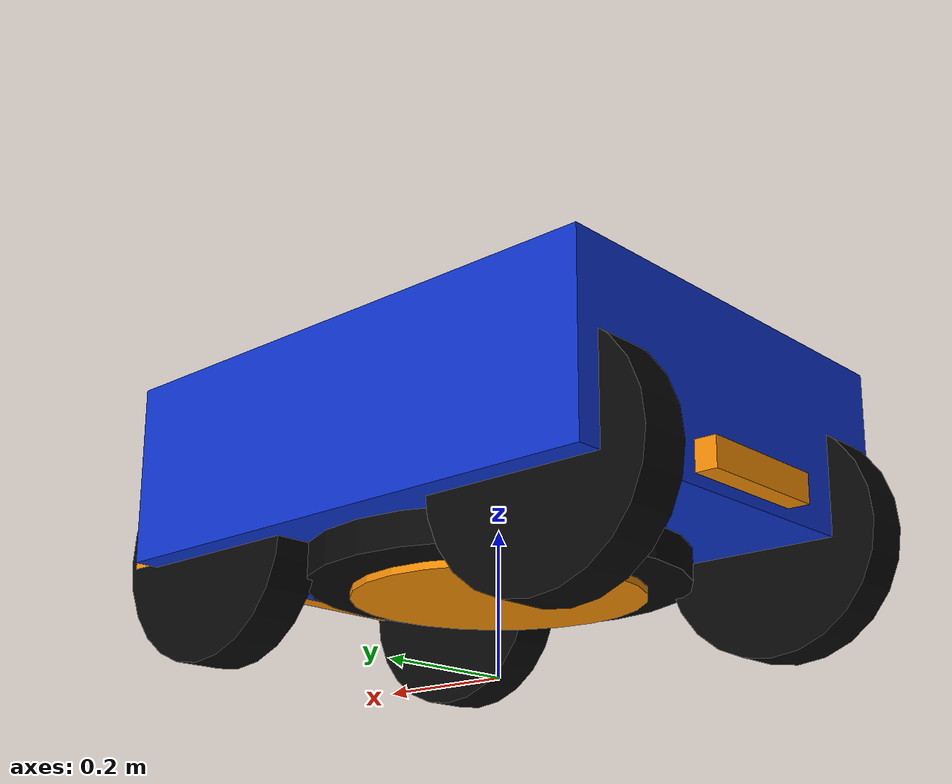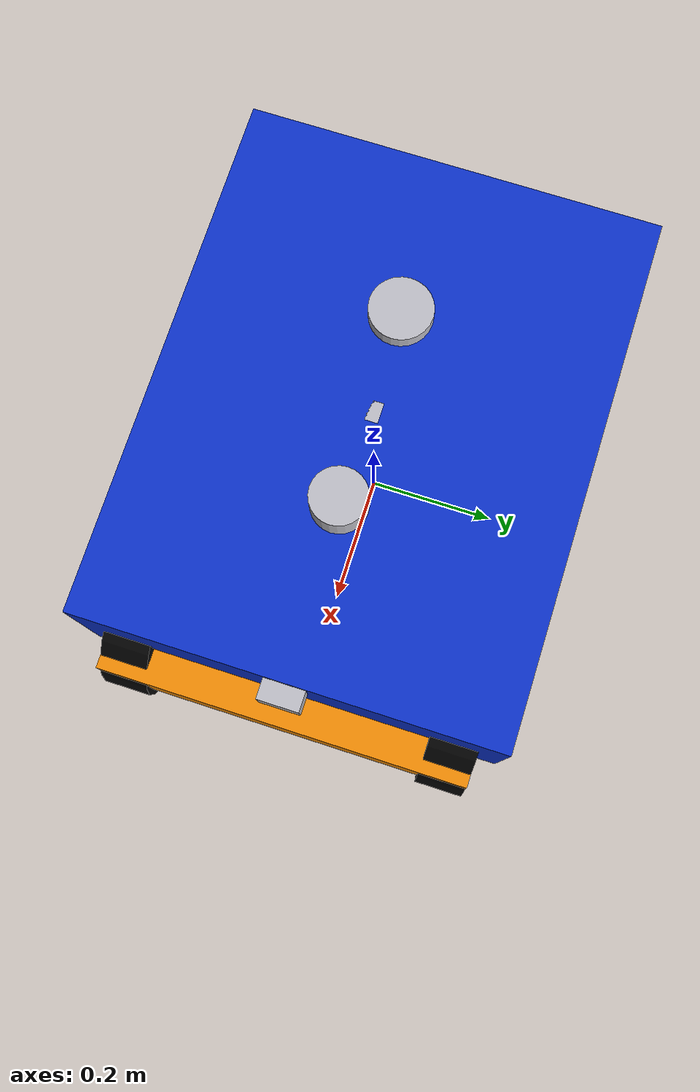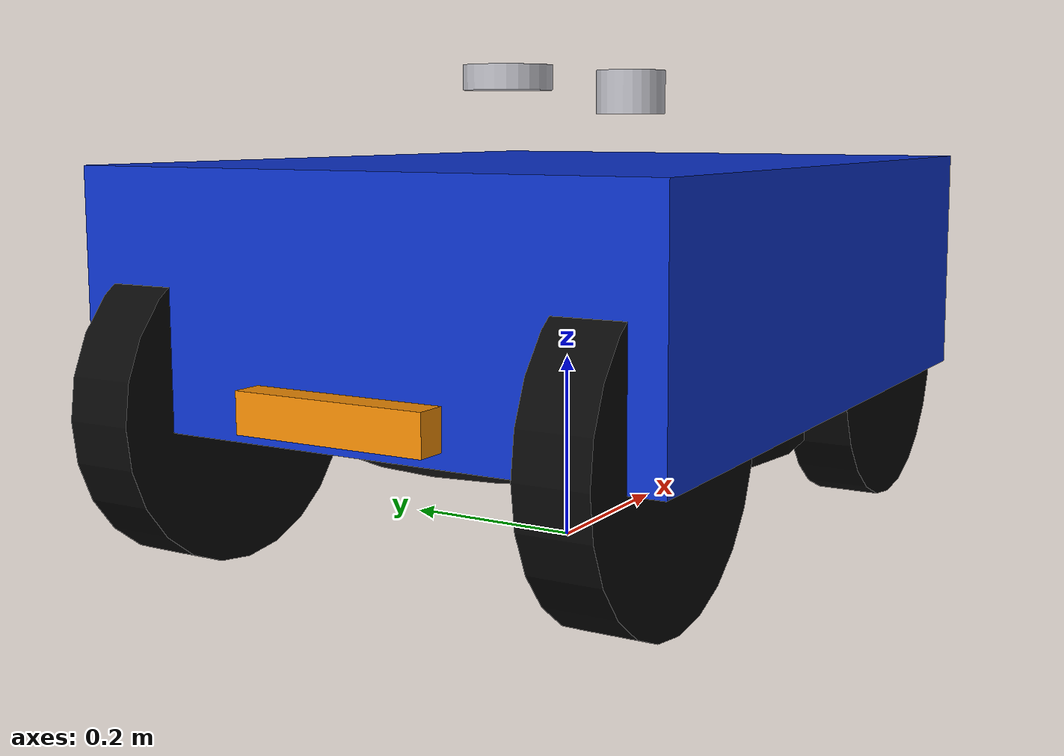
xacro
<?xml version="1.0"?>
<robot name="intelligent_mower" xmlns:xacro="http://www.ros.org/wiki/xacro">
  <!-- SI units. The design is a compact, four-wheel skid-steer mower. -->
  <xacro:property name="mower_pi" value="3.141592653589793"/>
  <xacro:property name="wheel_radius" value="0.16"/>
  <xacro:property name="wheel_width" value="0.07"/>
  <xacro:property name="track" value="0.48"/>
  <xacro:property name="wheelbase" value="0.58"/>

  <material name="shell"><color rgba="0.05 0.20 0.80 1"/></material>
  <material name="tyre"><color rgba="0.03 0.03 0.03 1"/></material>
  <material name="safety"><color rgba="0.95 0.55 0.02 1"/></material>
  <material name="sensor"><color rgba="0.75 0.75 0.78 1"/></material>

  <xacro:macro name="box_inertia" params="mass x y z">
    <inertial><mass value="${mass}"/><inertia ixx="${mass * (y*y + z*z) / 12}" ixy="0" ixz="0" iyy="${mass * (x*x + z*z) / 12}" iyz="0" izz="${mass * (x*x + y*y) / 12}"/></inertial>
  </xacro:macro>
  <xacro:macro name="wheel" params="name">
    <link name="${name}">
      <inertial><origin rpy="${mower_pi/2} 0 0"/><mass value="0.65"/><inertia ixx="0.008" ixy="0" ixz="0" iyy="0.008" iyz="0" izz="0.006"/></inertial>
      <visual><origin rpy="${mower_pi/2} 0 0"/><geometry><cylinder radius="${wheel_radius}" length="${wheel_width}"/></geometry><material name="tyre"/></visual>
      <collision><origin rpy="${mower_pi/2} 0 0"/><geometry><cylinder radius="${wheel_radius}" length="${wheel_width}"/></geometry></collision>
    </link>
  </xacro:macro>

  <link name="base_footprint"/>
  <link name="base_link">
    <xacro:box_inertia mass="18.0" x="0.78" y="0.62" z="0.25"/>
    <visual><origin xyz="0 0 0.27"/><geometry><box size="0.78 0.62 0.25"/></geometry><material name="shell"/></visual>
    <collision><origin xyz="0 0 0.27"/><geometry><box size="0.78 0.62 0.25"/></geometry></collision>
  </link>
  <joint name="base_footprint_joint" type="fixed"><parent link="base_footprint"/><child link="base_link"/><origin xyz="0 0 0.02"/></joint>

  <xacro:wheel name="front_left_wheel_link"/>
  <joint name="front_left_wheel_joint" type="continuous"><parent link="base_link"/><child link="front_left_wheel_link"/><origin xyz="${wheelbase/2} ${track/2} ${wheel_radius}"/><axis xyz="0 1 0"/></joint>
  <xacro:wheel name="front_right_wheel_link"/>
  <joint name="front_right_wheel_joint" type="continuous"><parent link="base_link"/><child link="front_right_wheel_link"/><origin xyz="${wheelbase/2} -${track/2} ${wheel_radius}"/><axis xyz="0 1 0"/></joint>
  <xacro:wheel name="rear_left_wheel_link"/>
  <joint name="rear_left_wheel_joint" type="continuous"><parent link="base_link"/><child link="rear_left_wheel_link"/><origin xyz="-${wheelbase/2} ${track/2} ${wheel_radius}"/><axis xyz="0 1 0"/></joint>
  <xacro:wheel name="rear_right_wheel_link"/>
  <joint name="rear_right_wheel_joint" type="continuous"><parent link="base_link"/><child link="rear_right_wheel_link"/><origin xyz="-${wheelbase/2} -${track/2} ${wheel_radius}"/><axis xyz="0 1 0"/></joint>

  <!-- The deck collision is separate from the visual blade, so the blade can be controlled safely later. -->
  <link name="cutter_deck_link">
    <xacro:box_inertia mass="3.0" x="0.52" y="0.52" z="0.06"/>
    <visual><geometry><cylinder radius="0.26" length="0.06"/></geometry><material name="tyre"/></visual>
    <collision><geometry><cylinder radius="0.26" length="0.06"/></geometry></collision>
  </link>
  <joint name="cutter_deck_joint" type="fixed"><parent link="base_link"/><child link="cutter_deck_link"/><origin xyz="0 0 0.13"/></joint>
  <link name="cutter_blade_link"><visual><geometry><cylinder radius="0.20" length="0.01"/></geometry><material name="safety"/></visual></link>
  <joint name="cutter_blade_joint" type="continuous"><parent link="cutter_deck_link"/><child link="cutter_blade_link"/><origin xyz="0 0 -0.04"/><axis xyz="0 0 1"/></joint>

  <!-- Bumper gives perception/control software a frame for a contact sensor or safety zone. -->
  <link name="bumper_link"><xacro:box_inertia mass="0.25" x="0.05" y="0.55" z="0.10"/><visual><geometry><box size="0.05 0.55 0.10"/></geometry><material name="safety"/></visual><collision><geometry><box size="0.05 0.55 0.10"/></geometry></collision></link>
  <joint name="bumper_joint" type="fixed"><parent link="base_link"/><child link="bumper_link"/><origin xyz="0.415 0 0.20"/></joint>

  <link name="lidar_link"><xacro:box_inertia mass="0.15" x="0.08" y="0.08" z="0.05"/><visual><geometry><cylinder radius="0.04" length="0.05"/></geometry><material name="sensor"/></visual></link>
  <joint name="lidar_joint" type="fixed"><parent link="base_link"/><child link="lidar_link"/><origin xyz="0.15 0 0.47"/></joint>
  <link name="camera_link"><xacro:box_inertia mass="0.10" x="0.04" y="0.06" z="0.05"/><visual><geometry><box size="0.04 0.06 0.05"/></geometry><material name="sensor"/></visual></link>
  <joint name="camera_joint" type="fixed"><parent link="base_link"/><child link="camera_link"/><origin xyz="0.40 0 0.36"/></joint>
  <link name="imu_link"><xacro:box_inertia mass="0.04" x="0.03" y="0.02" z="0.01"/><visual><geometry><box size="0.03 0.02 0.01"/></geometry><material name="sensor"/></visual></link>
  <joint name="imu_joint" type="fixed"><parent link="base_link"/><child link="imu_link"/><origin xyz="0 0 0.39"/></joint>
  <!-- This is a frame only: Gazebo does not synthesize satellite measurements. -->
  <link name="gnss_antenna_link"><visual><geometry><cylinder radius="0.045" length="0.025"/></geometry><material name="sensor"/></visual></link>
  <joint name="gnss_antenna_joint" type="fixed"><parent link="base_link"/><child link="gnss_antenna_link"/><origin xyz="-0.12 0 0.48"/></joint>
  <link name="charging_contact_link"><visual><geometry><box size="0.03 0.20 0.04"/></geometry><material name="safety"/></visual></link>
  <joint name="charging_contact_joint" type="fixed"><parent link="base_link"/><child link="charging_contact_link"/><origin xyz="-0.405 0 0.18"/></joint>

  <gazebo reference="lidar_link"><sensor name="lidar" type="gpu_lidar"><always_on>true</always_on><update_rate>15</update_rate><topic>/intelligent_mower/scan</topic><lidar><scan><horizontal><samples>720</samples><resolution>1</resolution><min_angle>-${mower_pi}</min_angle><max_angle>${mower_pi}</max_angle></horizontal></scan><range><min>0.10</min><max>20.0</max><resolution>0.02</resolution></range></lidar></sensor></gazebo>
  <gazebo reference="camera_link"><sensor name="front_camera" type="camera"><always_on>true</always_on><update_rate>15</update_rate><topic>/intelligent_mower/camera/image</topic><camera><horizontal_fov>1.396</horizontal_fov><image><width>640</width><height>480</height><format>R8G8B8</format></image><clip><near>0.05</near><far>20</far></clip></camera></sensor></gazebo>
  <gazebo reference="imu_link"><sensor name="imu" type="imu"><always_on>true</always_on><update_rate>100</update_rate><topic>/intelligent_mower/imu</topic></sensor></gazebo>
  <gazebo>
    <plugin filename="gz-sim-diff-drive-system" name="gz::sim::systems::DiffDrive">
      <left_joint>front_left_wheel_joint</left_joint><left_joint>rear_left_wheel_joint</left_joint><right_joint>front_right_wheel_joint</right_joint><right_joint>rear_right_wheel_joint</right_joint>
      <wheel_separation>${track}</wheel_separation><wheel_radius>${wheel_radius}</wheel_radius><topic>/intelligent_mower/cmd_vel</topic><odom_topic>/intelligent_mower/odom</odom_topic><tf_topic>/intelligent_mower/tf</tf_topic><frame_id>odom</frame_id><child_frame_id>base_footprint</child_frame_id><odom_publish_frequency>30</odom_publish_frequency><min_velocity>-0.6</min_velocity><max_velocity>0.6</max_velocity>
    </plugin>
    <plugin filename="gz-sim-joint-state-publisher-system" name="gz::sim::systems::JointStatePublisher"><topic>/intelligent_mower/joint_states</topic></plugin>
  </gazebo>
</robot>
